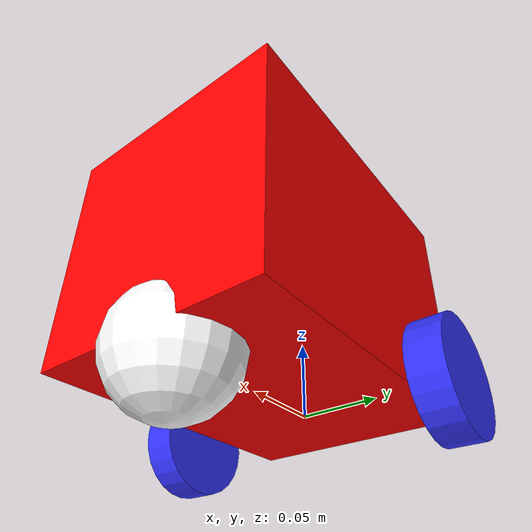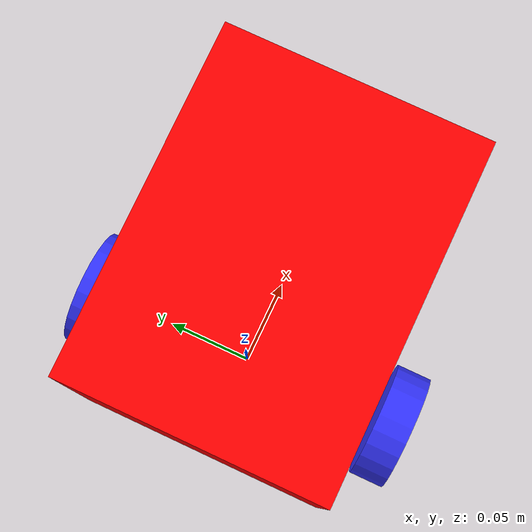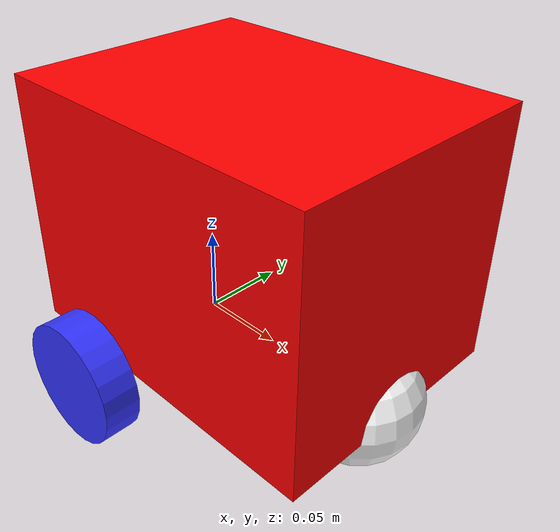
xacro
<?xml version="1.0"?>
<robot xmlns:xacro="http://www.ros.org/wiki/xacro">

    <xacro:include filename="inertial_macros.xacro"/>

      <material name ="white">
        <color rgba = "1 1 1 1"/>
    </material>

    <material name ="orange">
        <color rgba = "1 0.3 0.1 1"/>
    </material>

    <material name ="blue">
        <color rgba = "0.2 0.2 1 1"/>
    </material>

    <material name ="black">
        <color rgba = "0 0 0 1"/>
    </material>

    <material name ="red">
        <color rgba = "1 0 0 1"/>
    </material>

    <!--BASE LINK-->

    <link name="base_link">

    </link>

    <!--BASE FOOTPRINT LINK-->

    <joint name="base_footprint_joint" type="fixed">
        <parent link="base_link"/>
        <child link="base_footprint"/>
        <origin xyz = "0 0 0" rpy="0 0 0"/>
    </joint>

    <link name="base_footprint">
    </link>

    <!--CHASSIS LINK-->

    <joint name = "chassis_joint" type="fixed">
        <parent link="base_link"/>
        <child link="chassis"/>
        <origin xyz="-0.063 0 0"/>

    </joint>

    <link name="chassis">
        <visual>
            <origin xyz="0.1 0 0.075"/>
            <geometry>
                <box size ="0.2 0.15 0.15"/>
            </geometry>
            <material name="red"/>
        </visual>

        <collision>
            <origin xyz="0.1 0 0.075" rpy = "0 0 0"/>
            <geometry>
                <box size ="0.2 0.15 0.15"/>
            </geometry>
        </collision>
        <xacro:inertial_box mass="0.12" x = "0.2" y = "0.15" z = "0.15">
            <origin xyz="0.1 0 0.075" rpy ="0 0 0"/>
        </xacro:inertial_box>
    </link>

    <gazebo reference="chassis">
        <material>Gazebo/Red</material>
    </gazebo>

    <!--LEFT WHEEL JOINT-->

    <joint name = "left_wheel_joint" type="continuous">
        <parent link = "base_link"/>
        <child link = "left_wheel"/>
        <origin xyz="0 0.095 0" rpy="-${pi/2} 0 0"/>
        <axis xyz="0 0 1"/>
    </joint>

    <link name = "left_wheel">
        <visual>
            <geometry>
                <cylinder radius="0.0355" length="0.021"/>
            </geometry>
            <material name ="blue"/>
        </visual>
        <collision>
            <geometry>
                <sphere radius="0.0355"/>
            </geometry>
        </collision>
        <xacro:inertial_cylinder mass = "0.075" length="0.021" radius="0.0355">
            <origin xyz="0 0 0" rpy="0 0 0"/>
        </xacro:inertial_cylinder>
    </link>

    <gazebo reference="left_wheel">
        <material>Gazebo/Blue</material>
    </gazebo>

    <!--RIGHT WHEEL JOINT-->

    <joint name = "right_wheel_joint" type="continuous">
        <parent link = "base_link"/>
        <child link = "right_wheel"/>
        <origin xyz="0 -0.095 0" rpy="${pi/2} 0 0"/>
        <axis xyz="0 0 -1"/>
    </joint>

    <link name = "right_wheel">
        <visual>
            <geometry>
                <cylinder radius="0.0355" length="0.021"/>
            </geometry>
            <material name ="blue"/>
        </visual>
        <collision>
            <geometry>
                <sphere radius="0.0355"/>
            </geometry>
        </collision>
        <xacro:inertial_cylinder mass = "0.075" length="0.021" radius="0.0355">
            <origin xyz="0 0 0" rpy="0 0 0"/>
        </xacro:inertial_cylinder>
    </link>

    <gazebo reference="right_wheel">
        <material>Gazebo/Blue</material>
    </gazebo>

    <!--CASTER WHEEL JOINT-->

    <joint name="caster_wheel_joint" type="fixed">
        <parent link="chassis"/>
        <child link="caster_wheel"/>
        <origin xyz = "0.175 0 0"/>
    </joint>

    <link name="caster_wheel">
        <visual>
            <geometry>
                <sphere radius="0.037"/>
            </geometry>
            <material name ="white"/>
        </visual>
        <collision>
            <geometry>
                <sphere radius="0.037"/>
            </geometry>
        </collision>
        <!--original radius 0.02475-->
        <xacro:inertial_sphere mass = "0.1" radius="0.037">
            <origin xyz="0 0 0" rpy="0 0 0"/>
        </xacro:inertial_sphere>
    </link>

    <gazebo reference="caster_wheel">
        <material>Gazebo/White</material>
        <mu1 value="0.001"/>
        <mu2 value="0.001"/>
    </gazebo>

</robot>
